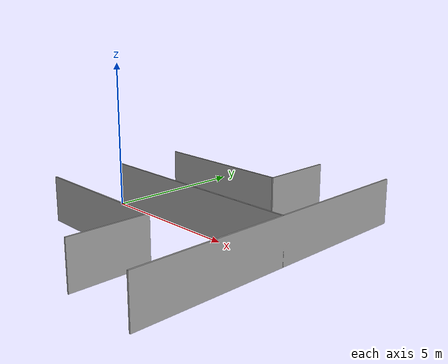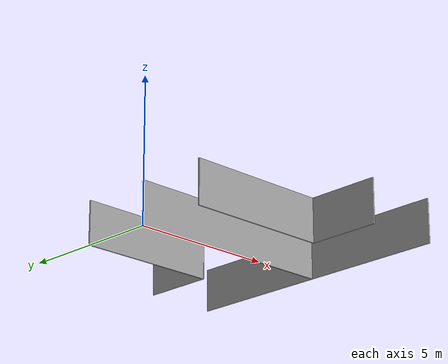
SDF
<?xml version='1.0'?>
<sdf version='1.6'>
  <model name='emiro_wall'>
    <pose frame=''>3.75 0 0 0 -0 0</pose>
    <link name='wall_12'>
      <collision name='wall_12_Collision'>
        <geometry>
          <box>
            <size>4.95 0.05 1.5</size>
          </box>
        </geometry>
        <pose frame=''>0 0 0.75 0 -0 0</pose>
      </collision>
      <visual name='wall_12_Visual'>
        <pose frame=''>0 0 0.75 0 -0 0</pose>
        <geometry>
          <box>
            <size>4.95 0.05 1.5</size>
          </box>
        </geometry>
        <material>
          <script>
            <uri>file://media/materials/scripts/gazebo.material</uri>
            <name>Gazebo/Grey</name>
          </script>
          <ambient>1 1 1 1</ambient>
        </material>
        <meta>
          <layer>0</layer>
        </meta>
      </visual>
      <pose frame=''>-1.3 -2.5 0 0 -0 0</pose>
    </link>
    <link name='wall_14'>
      <collision name='wall_14_Collision'>
        <geometry>
          <box>
            <size>2.55 0.05 1.5</size>
          </box>
        </geometry>
        <pose frame=''>0 0 0.75 0 -0 0</pose>
      </collision>
      <visual name='wall_14_Visual'>
        <pose frame=''>0 0 0.75 0 -0 0</pose>
        <geometry>
          <box>
            <size>2.55 0.05 1.5</size>
          </box>
        </geometry>
        <material>
          <script>
            <uri>file://media/materials/scripts/gazebo.material</uri>
            <name>Gazebo/Grey</name>
          </script>
          <ambient>1 1 1 1</ambient>
        </material>
        <meta>
          <layer>0</layer>
        </meta>
      </visual>
      <pose frame=''>1.15 -3.75 0 0 -0 -1.5708</pose>
    </link>
    <link name='wall_16'>
      <collision name='wall_16_Collision'>
        <geometry>
          <box>
            <size>10.05 0.05 1.5</size>
          </box>
        </geometry>
        <pose frame=''>0 0 0.75 0 -0 0</pose>
      </collision>
      <visual name='wall_16_Visual'>
        <pose frame=''>0 0 0.75 0 -0 0</pose>
        <geometry>
          <box>
            <size>10.05 0.05 1.5</size>
          </box>
        </geometry>
        <material>
          <script>
            <uri>file://media/materials/scripts/gazebo.material</uri>
            <name>Gazebo/Grey</name>
          </script>
          <ambient>1 1 1 1</ambient>
        </material>
        <meta>
          <layer>0</layer>
        </meta>
      </visual>
      <pose frame=''>3.75 0 0 0 -0 1.5708</pose>
    </link>
    <link name='wall_4'>
      <collision name='wall_4_Collision'>
        <geometry>
          <box>
            <size>7.55 0.05 1.5</size>
          </box>
        </geometry>
        <pose frame=''>0 0 0.75 0 -0 0</pose>
      </collision>
      <visual name='wall_4_Visual'>
        <pose frame=''>0 0 0.75 0 -0 0</pose>
        <geometry>
          <box>
            <size>7.55 0.05 1.5</size>
          </box>
        </geometry>
        <material>
          <script>
            <uri>file://media/materials/scripts/gazebo.material</uri>
            <name>Gazebo/Grey</name>
          </script>
          <ambient>1 1 1 1</ambient>
        </material>
        <meta>
          <layer>0</layer>
        </meta>
      </visual>
      <pose frame=''>-0 0 0 0 -0 0</pose>
    </link>
    <link name='wall_6'>
      <collision name='wall_6_Collision'>
        <geometry>
          <box>
            <size>4.95 0.05 1.5</size>
          </box>
        </geometry>
        <pose frame=''>0 0 0.75 0 -0 0</pose>
      </collision>
      <visual name='wall_6_Visual'>
        <pose frame=''>0 0 0.75 0 -0 0</pose>
        <geometry>
          <box>
            <size>4.95 0.05 1.5</size>
          </box>
        </geometry>
        <material>
          <script>
            <uri>file://media/materials/scripts/gazebo.material</uri>
            <name>Gazebo/Grey</name>
          </script>
          <ambient>1 1 1 1</ambient>
        </material>
        <meta>
          <layer>0</layer>
        </meta>
      </visual>
      <pose frame=''>-1.3 2.5 0 0 -0 0</pose>
    </link>
    <link name='wall_8'>
      <collision name='wall_8_Collision'>
        <geometry>
          <box>
            <size>2.48 0.05 1.5</size>
          </box>
        </geometry>
        <pose frame=''>0 0 0.75 0 -0 0</pose>
      </collision>
      <visual name='wall_8_Visual'>
        <pose frame=''>0 0 0.75 0 -0 0</pose>
        <geometry>
          <box>
            <size>2.48 0.05 1.5</size>
          </box>
        </geometry>
        <material>
          <script>
            <uri>file://media/materials/scripts/gazebo.material</uri>
            <name>Gazebo/Grey</name>
          </script>
          <ambient>1 1 1 1</ambient>
        </material>
        <meta>
          <layer>0</layer>
        </meta>
      </visual>
      <pose frame=''>1.15 3.715 0 0 -0 1.5708</pose>
    </link>
    <static>1</static>
  </model>
</sdf>
